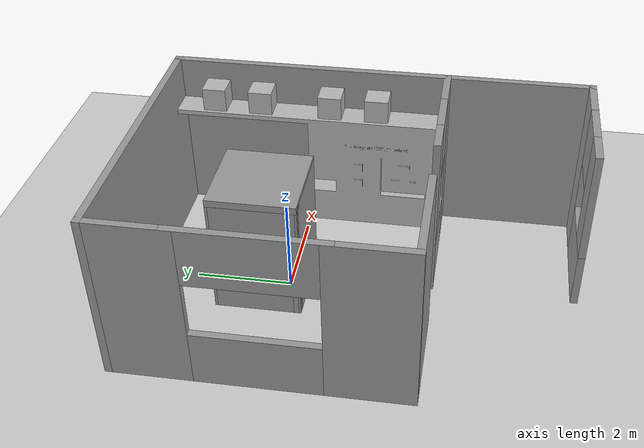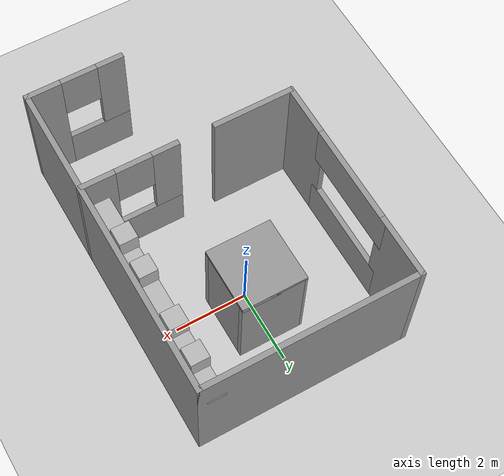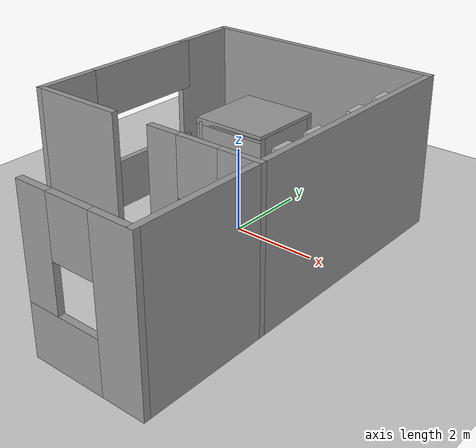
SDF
<sdf version="1.7">
 <world name="default">
  <light name="sun" type="directional">
   <pose>0 0 10 0 -0 0</pose>
   <diffuse>0.8 0.8 0.8 1</diffuse>
   <specular>0.2 0.2 0.2 1</specular>
   <attenuation>
    <range>1000</range>
    <constant>0.9</constant>
    <linear>0.01</linear>
    <quadratic>0.001</quadratic>
   </attenuation>
   <direction>-0.5 0.1 -0.9</direction>
   <spot><inner_angle>0</inner_angle><outer_angle>0</outer_angle><falloff>0</falloff></spot>
  </light>
  <model name="ground_plane">
   <static>1</static>
   <link name="link">
    <collision name="collision">
     <geometry><plane><normal>0 0 1</normal><size>100 100</size></plane></geometry>
     <surface>
      <contact><collide_bitmask>65535</collide_bitmask></contact>
      <friction><ode><mu>100</mu><mu2>50</mu2></ode></friction>
     </surface>
    </collision>
    <visual name="visual">
     <cast_shadows>0</cast_shadows>
     <geometry><plane><normal>0 0 1</normal><size>100 100</size></plane></geometry>
     <material>
      <script><uri>file://media/materials/scripts/gazebo.material</uri><name>Gazebo/Grey</name></script>
     </material>
    </visual>
   </link>
  </model>
  <gravity>0 0 -9.8</gravity>
  <magnetic_field>6e-06 2.3e-05 -4.2e-05</magnetic_field>
  <atmosphere type="adiabatic"/>
  <physics type="ode">
   <max_step_size>0.001</max_step_size>
   <real_time_factor>1</real_time_factor>
   <real_time_update_rate>1000</real_time_update_rate>
  </physics>
  <scene><ambient>0.4 0.4 0.4 1</ambient><background>0.7 0.7 0.7 1</background><shadows>1</shadows></scene>
  <spherical_coordinates>
   <surface_model>EARTH_WGS84</surface_model>
   <latitude_deg>0</latitude_deg>
   <longitude_deg>0</longitude_deg>
   <elevation>0</elevation>
   <heading_deg>0</heading_deg>
  </spherical_coordinates>
  <model name="operation_desk">
   <pose>-1.6 2.85 0 1.5708 0 -1.5708</pose>
   <static>1</static>
   <link name="link">
    <visual name="visual">
     <geometry>
      <mesh><uri>model://operation_desk/operation_desk.STL</uri><scale>0.001 0.001 0.001</scale></mesh>
     </geometry>
    </visual>
    <collision name="collision">
     <geometry>
      <mesh><uri>model://operation_desk/operation_desk.STL</uri><scale>0.001 0.001 0.001</scale></mesh>
     </geometry>
    </collision>
   </link>
  </model>
  <model name="e2e">
   <pose>2.85 3 0 1.5708 0 -1.5708</pose>
   <static>1</static>
   <link name="link">
    <visual name="visual">
     <geometry><mesh><uri>model://e2e/E2E.STL</uri><scale>0.001 0.001 0.001</scale></mesh></geometry>
    </visual>
    <collision name="collision">
     <geometry><mesh><uri>model://e2e/E2E.STL</uri><scale>0.001 0.001 0.001</scale></mesh></geometry>
    </collision>
   </link>
  </model>
  <model name="hfr_mwc">
   <link name="Wall_0">
    <collision name="Wall_0_Collision">
     <geometry><box><size>6 0.15 3.6</size></box></geometry>
     <pose>0 0 1.8 0 -0 0</pose>
    </collision>
    <visual name="Wall_0_Visual">
     <pose>0 0 1.8 0 -0 0</pose>
     <geometry><box><size>6 0.15 3.6</size></box></geometry>
     <material>
      <script><uri>file://media/materials/scripts/gazebo.material</uri><name>Gazebo/Grey</name></script>
      <ambient>1 1 1 1</ambient>
     </material>
     <meta><layer>0</layer></meta>
    </visual>
    <pose>-0 2.925 0 0 -0 0</pose>
   </link>
   <link name="Wall_1">
    <collision name="Wall_1_Collision">
     <geometry><box><size>9 0.15 3.6</size></box></geometry>
     <pose>0 0 1.8 0 -0 0</pose>
    </collision>
    <visual name="Wall_1_Visual">
     <pose>0 0 1.8 0 -0 0</pose>
     <geometry><box><size>9 0.15 3.6</size></box></geometry>
     <material>
      <script><uri>file://media/materials/scripts/gazebo.material</uri><name>Gazebo/Grey</name></script>
      <ambient>1 1 1 1</ambient>
     </material>
     <meta><layer>0</layer></meta>
    </visual>
    <pose>2.925 -1.5 0 0 -0 -1.5708</pose>
   </link>
   <link name="Wall_11">
    <collision name="Wall_11_Collision">
     <geometry><box><size>1.75 0.15 3.6</size></box></geometry>
     <pose>0 0 1.8 0 -0 0</pose>
    </collision>
    <visual name="Wall_11_Visual">
     <pose>0 0 1.8 0 -0 0</pose>
     <geometry><box><size>1.75 0.15 3.6</size></box></geometry>
     <material>
      <script><uri>file://media/materials/scripts/gazebo.material</uri><name>Gazebo/Grey</name></script>
      <ambient>1 1 1 1</ambient>
     </material>
     <meta><layer>0</layer></meta>
    </visual>
    <pose>-2.925 2.125 0 0 -0 -1.5708</pose>
   </link>
   <link name="Wall_13">
    <collision name="Wall_13_Collision">
     <geometry><box><size>2.25 0.15 3.6</size></box></geometry>
     <pose>0 0 1.8 0 -0 0</pose>
    </collision>
    <visual name="Wall_13_Visual">
     <pose>0 0 1.8 0 -0 0</pose>
     <geometry><box><size>2.25 0.15 3.6</size></box></geometry>
     <material>
      <script><uri>file://media/materials/scripts/gazebo.material</uri><name>Gazebo/Grey</name></script>
      <ambient>1 1 1 1</ambient>
     </material>
     <meta><layer>0</layer></meta>
    </visual>
    <pose>-1.825 -2.925 0 0 -0 3.14159</pose>
   </link>
   <link name="Wall_14">
    <collision name="Wall_14_Collision">
     <geometry><box><size>1.75 0.15 3.6</size></box></geometry>
     <pose>0 0 1.8 0 -0 0</pose>
    </collision>
    <visual name="Wall_14_Visual">
     <pose>0 0 1.8 0 -0 0</pose>
     <geometry><box><size>1.75 0.15 3.6</size></box></geometry>
     <material>
      <script><uri>file://media/materials/scripts/gazebo.material</uri><name>Gazebo/Grey</name></script>
      <ambient>1 1 1 1</ambient>
     </material>
     <meta><layer>0</layer></meta>
    </visual>
    <pose>-2.925 -2.125 0 0 -0 1.5708</pose>
   </link>
   <link name="Wall_2">
    <pose>1.625 -2.925 0 0 -0 3.14159</pose>
    <visual name="Wall_2_Visual_0">
     <pose>-0.87626 0 1.8 0 -0 0</pose>
     <geometry><box><size>0.997481 0.15 3.6</size></box></geometry>
     <material>
      <script><uri>file://media/materials/scripts/gazebo.material</uri><name>Gazebo/Grey</name></script>
      <ambient>1 1 1 1</ambient>
     </material>
     <meta><layer>0</layer></meta>
    </visual>
    <collision name="Wall_2_Collision_0">
     <geometry><box><size>0.997481 0.15 3.6</size></box></geometry>
     <pose>-0.87626 0 1.8 0 -0 0</pose>
    </collision>
    <visual name="Wall_2_Visual_1">
     <pose>0.49874 0 0.6 0 -0 0</pose>
     <geometry><box><size>1.75252 0.15 1.2</size></box></geometry>
     <material>
      <script><uri>file://media/materials/scripts/gazebo.material</uri><name>Gazebo/Grey</name></script>
      <ambient>1 1 1 1</ambient>
     </material>
     <meta><layer>0</layer></meta>
    </visual>
    <collision name="Wall_2_Collision_1">
     <geometry><box><size>1.75252 0.15 1.2</size></box></geometry>
     <pose>0.49874 0 0.6 0 -0 0</pose>
    </collision>
    <visual name="Wall_2_Visual_2">
     <pose>0.99874 0 2.4 0 -0 0</pose>
     <geometry><box><size>0.752519 0.15 2.4</size></box></geometry>
     <material>
      <script><uri>file://media/materials/scripts/gazebo.material</uri><name>Gazebo/Grey</name></script>
      <ambient>1 1 1 1</ambient>
     </material>
     <meta><layer>0</layer></meta>
    </visual>
    <collision name="Wall_2_Collision_2">
     <geometry><box><size>0.752519 0.15 2.4</size></box></geometry>
     <pose>0.99874 0 2.4 0 -0 0</pose>
    </collision>
    <visual name="Wall_2_Visual_3">
     <pose>0.122481 0 2.95 0 -0 0</pose>
     <geometry><box><size>1 0.15 1.3</size></box></geometry>
     <material>
      <script><uri>file://media/materials/scripts/gazebo.material</uri><name>Gazebo/Grey</name></script>
      <ambient>1 1 1 1</ambient>
     </material>
     <meta><layer>0</layer></meta>
    </visual>
    <collision name="Wall_2_Collision_3">
     <geometry><box><size>1 0.15 1.3</size></box></geometry>
     <pose>0.122481 0 2.95 0 -0 0</pose>
    </collision>
   </link>
   <link name="RWall_2">
    <pose>1.625 -5.925 0 0 -0 3.14159</pose>
    <visual name="Wall_2_Visual_0">
     <pose>-0.87626 0 1.8 0 -0 0</pose>
     <geometry><box><size>0.997481 0.15 3.6</size></box></geometry>
     <material>
      <script><uri>file://media/materials/scripts/gazebo.material</uri><name>Gazebo/Grey</name></script>
      <ambient>1 1 1 1</ambient>
     </material>
     <meta><layer>0</layer></meta>
    </visual>
    <collision name="Wall_2_Collision_0">
     <geometry><box><size>0.997481 0.15 3.6</size></box></geometry>
     <pose>-0.87626 0 1.8 0 -0 0</pose>
    </collision>
    <visual name="Wall_2_Visual_1">
     <pose>0.49874 0 0.6 0 -0 0</pose>
     <geometry><box><size>1.75252 0.15 1.2</size></box></geometry>
     <material>
      <script><uri>file://media/materials/scripts/gazebo.material</uri><name>Gazebo/Grey</name></script>
      <ambient>1 1 1 1</ambient>
     </material>
     <meta><layer>0</layer></meta>
    </visual>
    <collision name="Wall_2_Collision_1">
     <geometry><box><size>1.75252 0.15 1.2</size></box></geometry>
     <pose>0.49874 0 0.6 0 -0 0</pose>
    </collision>
    <visual name="Wall_2_Visual_2">
     <pose>0.99874 0 2.4 0 -0 0</pose>
     <geometry><box><size>0.752519 0.15 2.4</size></box></geometry>
     <material>
      <script><uri>file://media/materials/scripts/gazebo.material</uri><name>Gazebo/Grey</name></script>
      <ambient>1 1 1 1</ambient>
     </material>
     <meta><layer>0</layer></meta>
    </visual>
    <collision name="Wall_2_Collision_2">
     <geometry><box><size>0.752519 0.15 2.4</size></box></geometry>
     <pose>0.99874 0 2.4 0 -0 0</pose>
    </collision>
    <visual name="Wall_2_Visual_3">
     <pose>0.122481 0 2.95 0 -0 0</pose>
     <geometry><box><size>1 0.15 1.3</size></box></geometry>
     <material>
      <script><uri>file://media/materials/scripts/gazebo.material</uri><name>Gazebo/Grey</name></script>
      <ambient>1 1 1 1</ambient>
     </material>
     <meta><layer>0</layer></meta>
    </visual>
    <collision name="Wall_2_Collision_3">
     <geometry><box><size>1 0.15 1.3</size></box></geometry>
     <pose>0.122481 0 2.95 0 -0 0</pose>
    </collision>
   </link>
   <link name="Wall_22">
    <collision name="Wall_22_Collision">
     <geometry><box><size>1.8 0.15 2.6</size></box></geometry>
     <pose>0 0 1.3 0 -0 0</pose>
    </collision>
    <visual name="Wall_22_Visual">
     <pose>0 0 1.3 0 -0 0</pose>
     <geometry><box><size>1.8 0.15 2.6</size></box></geometry>
     <material>
      <script><uri>file://media/materials/scripts/gazebo.material</uri><name>Gazebo/Grey</name></script>
      <ambient>1 1 1 1</ambient>
     </material>
     <meta><layer>0</layer></meta>
    </visual>
    <pose>0.029143 1.325 0 0 -0 0</pose>
   </link>
   <link name="Wall_25">
    <collision name="Wall_25_Collision">
     <geometry><box><size>1.8 0.15 2.6</size></box></geometry>
     <pose>0 0 1.3 0 -0 0</pose>
    </collision>
    <visual name="Wall_25_Visual">
     <pose>0 0 1.3 0 -0 0</pose>
     <geometry><box><size>1.8 0.15 2.6</size></box></geometry>
     <material>
      <script><uri>file://media/materials/scripts/gazebo.material</uri><name>Gazebo/Grey</name></script>
      <ambient>1 1 1 1</ambient>
     </material>
     <meta><layer>0</layer></meta>
    </visual>
    <pose>-0.795928 0.5 0 0 -0 -1.57088</pose>
   </link>
   <link name="Wall_26">
    <collision name="Wall_26_Collision">
     <geometry><box><size>1.8 0.15 2.6</size></box></geometry>
     <pose>0 0 1.3 0 -0 0</pose>
    </collision>
    <visual name="Wall_26_Visual">
     <pose>0 0 1.3 0 -0 0</pose>
     <geometry><box><size>1.8 0.15 2.6</size></box></geometry>
     <material>
      <script><uri>file://media/materials/scripts/gazebo.material</uri><name>Gazebo/Grey</name></script>
      <ambient>1 1 1 1</ambient>
     </material>
     <meta><layer>0</layer></meta>
    </visual>
    <pose>0.029 -0.325 0 0 -0 0</pose>
   </link>
   <link name="Wall_28">
    <collision name="Wall_28_Collision">
     <geometry><box><size>1.5 0.15 2.6</size></box></geometry>
     <pose>0.4 0 1.3 0 -0 0</pose>
    </collision>
    <visual name="Wall_28_Visual">
     <pose>0.4 0 1.3 0 -0 0</pose>
     <geometry><box><size>1.5 0.15 2.6</size></box></geometry>
     <material>
      <script><uri>file://media/materials/scripts/gazebo.material</uri><name>Gazebo/Grey</name></script>
      <ambient>1 1 1 1</ambient>
     </material>
     <meta><layer>0</layer></meta>
    </visual>
    <pose>0.854143 0.9 0 0 -0 -1.5708</pose>
   </link>
   <link name="roof">
    <collision name="coll">
     <geometry><box><size>1.8 1.8 0.15</size></box></geometry>
     <pose>0 0 2.6 0 -0 0</pose>
    </collision>
    <visual name="vis">
     <pose>0 0 2.6 0 -0 0</pose>
     <geometry><box><size>1.8 1.8 0.15</size></box></geometry>
     <material>
      <script><uri>file://media/materials/scripts/gazebo.material</uri><name>Gazebo/Grey</name></script>
      <ambient>1 1 1 1</ambient>
     </material>
     <meta><layer>0</layer></meta>
    </visual>
    <pose>0.025 0.5 0 0 -0 0</pose>
   </link>
   <link name="window1">
    <visual name="vis0">
     <pose>-2.925 0 0.6 0 -0 0</pose>
     <geometry><box><size>0.15 3 1.2</size></box></geometry>
     <material>
      <script><uri>file://media/materials/scripts/gazebo.material</uri><name>Gazebo/Grey</name></script>
      <ambient>1 1 1 1</ambient>
     </material>
     <meta><layer>0</layer></meta>
    </visual>
    <collision name="collision_0">
     <geometry><box><size>0.15 3 1.2</size></box></geometry>
     <pose>-2.925 0 0.6 0 -0 0</pose>
    </collision>
   </link>
   <link name="window2">
    <visual name="vis0">
     <pose>-2.925 0 3 0 -0 0</pose>
     <geometry><box><size>0.15 3 1.2</size></box></geometry>
     <material>
      <script><uri>file://media/materials/scripts/gazebo.material</uri><name>Gazebo/Grey</name></script>
      <ambient>1 1 1 1</ambient>
     </material>
     <meta><layer>0</layer></meta>
    </visual>
    <collision name="collision_0">
     <geometry><box><size>0.15 3 1.2</size></box></geometry>
     <pose>-2.925 0 3 0 -0 0</pose>
    </collision>
   </link>
   <static>1</static>
  </model>
  <model name="Box">
   <pose>2.5 2 3 0 -0 0</pose>
   <static>1</static>
   <link name="link">
    <collision name="collision"><geometry><box><size>0.5 0.5 0.5</size></box></geometry></collision>
    <visual name="visual"><geometry><box><size>0.5 0.5 0.5</size></box></geometry></visual>
   </link>
  </model>
  <model name="Box_0">
   <pose>2.5 -1.5 3 0 -0 0</pose>
   <static>1</static>
   <link name="link">
    <collision name="collision"><geometry><box><size>0.5 0.5 0.5</size></box></geometry></collision>
    <visual name="visual"><geometry><box><size>0.5 0.5 0.5</size></box></geometry></visual>
   </link>
  </model>
  <model name="Box_1">
   <pose>2.5 1 3 0 -0 0</pose>
   <static>1</static>
   <link name="link">
    <collision name="collision"><geometry><box><size>0.5 0.5 0.5</size></box></geometry></collision>
    <visual name="visual"><geometry><box><size>0.5 0.5 0.5</size></box></geometry></visual>
   </link>
  </model>
  <model name="Box_2">
   <pose>2.5 -0.5 3 0 -0 0</pose>
   <static>1</static>
   <link name="link">
    <collision name="collision"><geometry><box><size>0.5 0.5 0.5</size></box></geometry></collision>
    <visual name="visual"><geometry><box><size>0.5 0.5 0.5</size></box></geometry></visual>
   </link>
  </model>
 </world>
</sdf>
